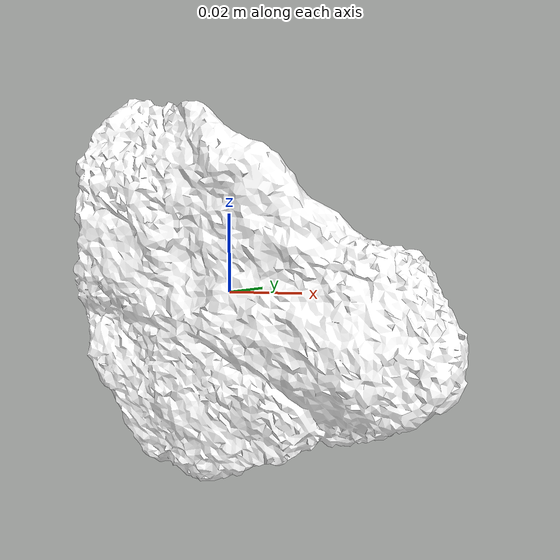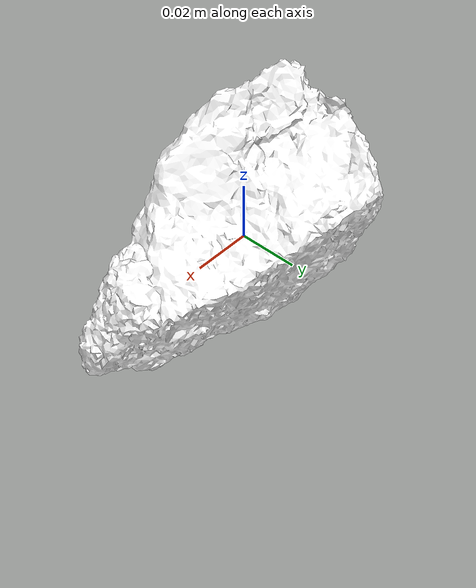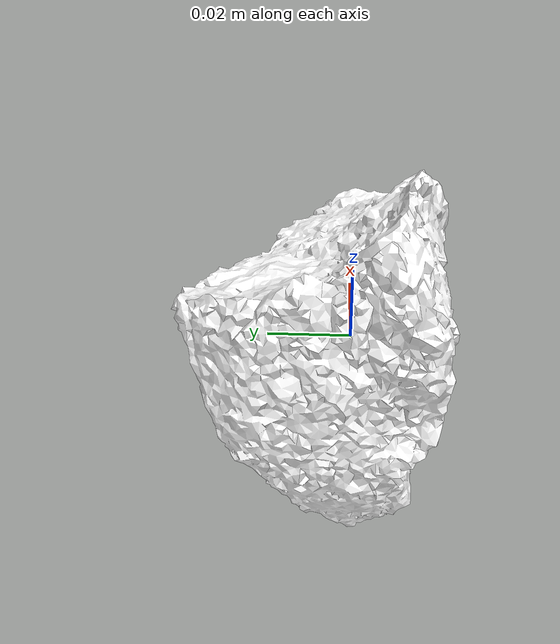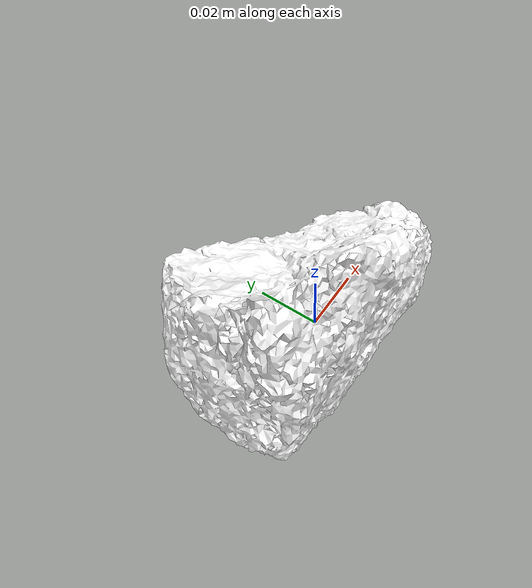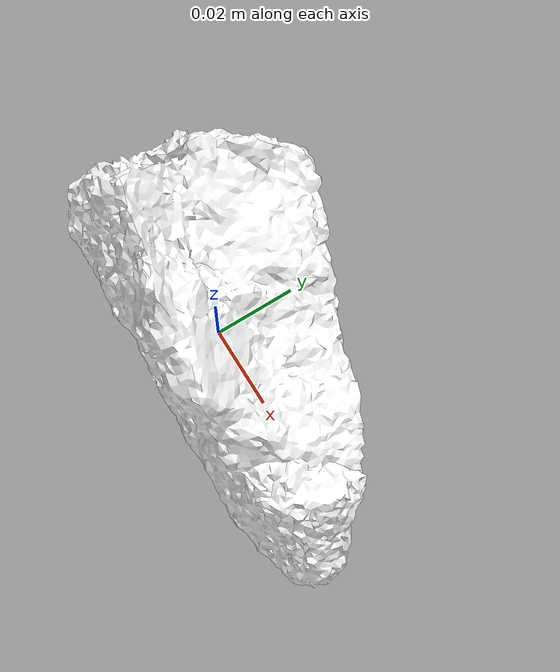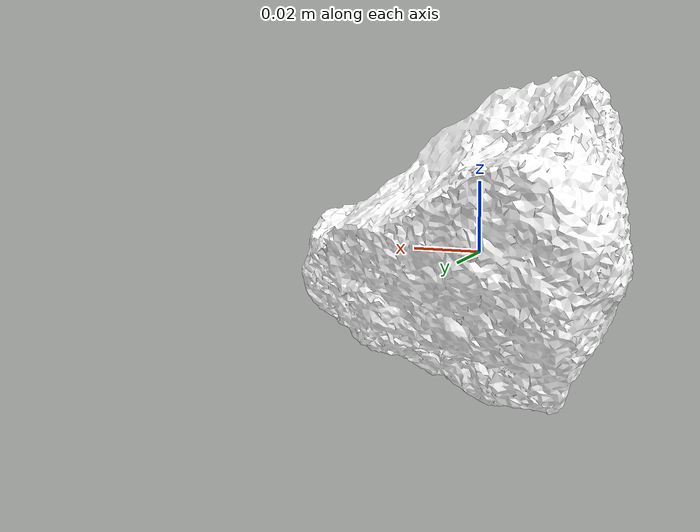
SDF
<?xml version="1.0" ?>
<sdf version="1.9">
  <model name="rock_7">
    <static>false</static>
    <link name="rock_link">
      <inertial>
        <mass>10.0</mass>
        <inertia>
          <ixx>0.1</ixx>
          <ixy>0.0</ixy>
          <ixz>0.0</ixz>
          <iyy>0.1</iyy>
          <iyz>0.0</iyz>
          <izz>0.1</izz>
        </inertia>
      </inertial>
      <!-- Visual -->
      <visual name="visual">
        <geometry>
          <mesh>
            <uri>model://rock_7/meshes/rock_7.obj</uri>
          </mesh>
        </geometry>
        <material>
          <ambient>1 1 1 1</ambient>
          <diffuse>1 1 1 1</diffuse>
          <pbr>
            <metal>
              <albedo_map>model://rock_5/meshes/rock_small_diffuse.jpg</albedo_map>
            </metal>
          </pbr>
        </material>
      </visual>
      <!-- Collision -->
      <collision name="collision">
        <geometry>
          <mesh>
            <uri>model://rock_7/meshes/rock_7.obj</uri>
          </mesh>
        </geometry>
      </collision>
    </link>
  </model>
</sdf>
